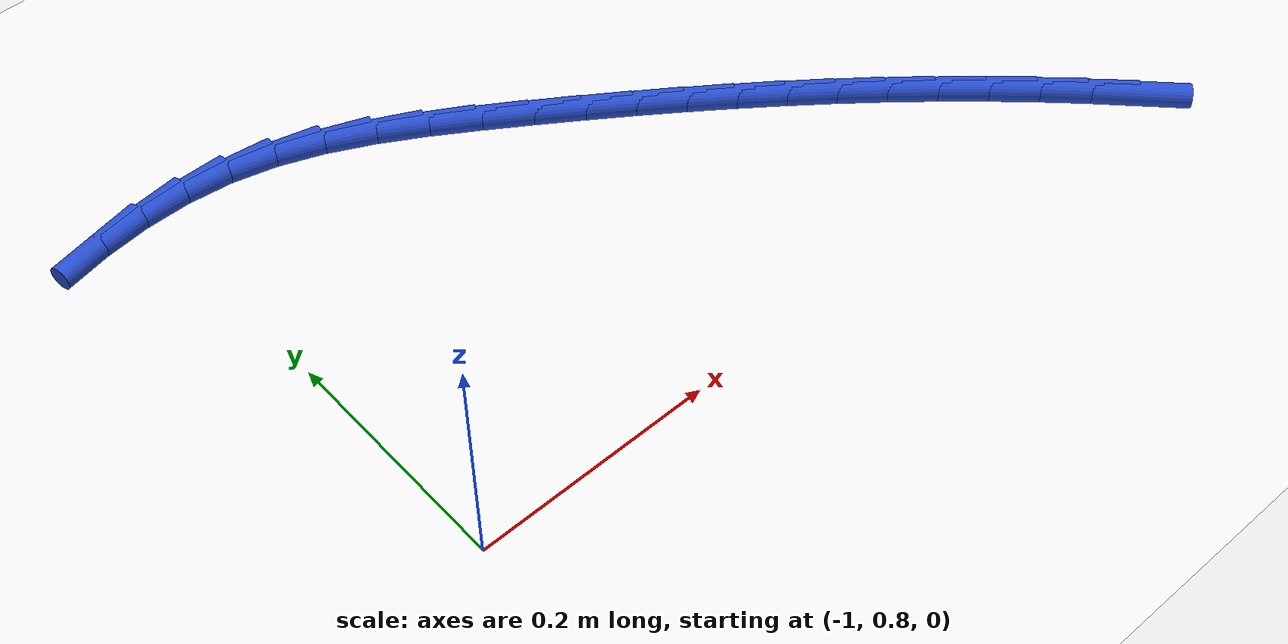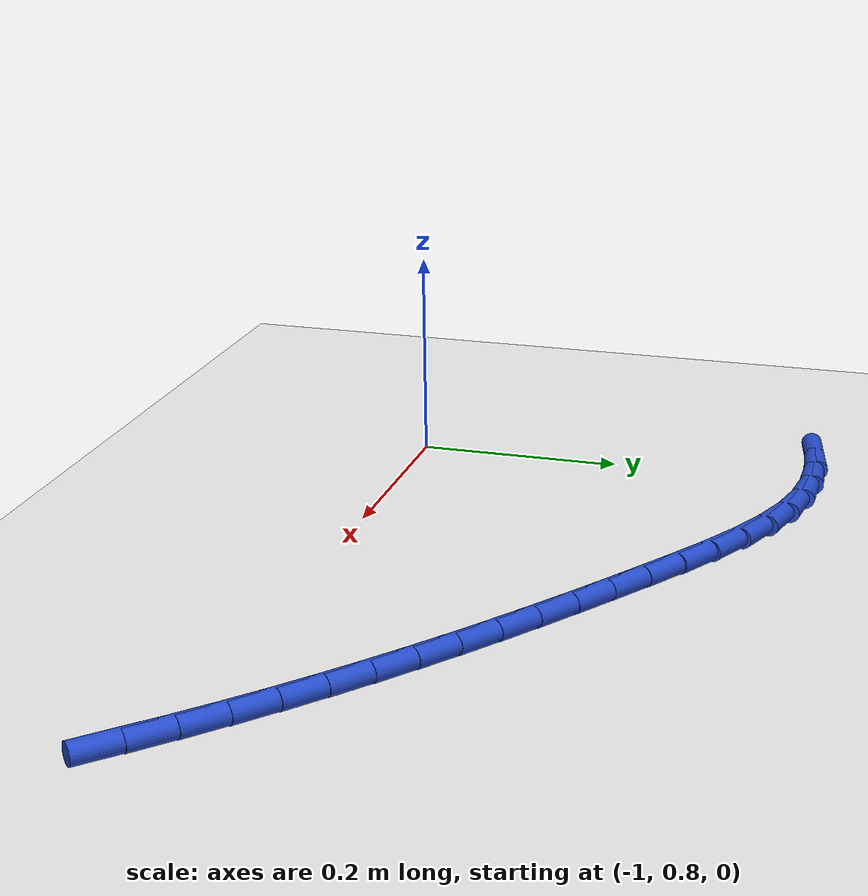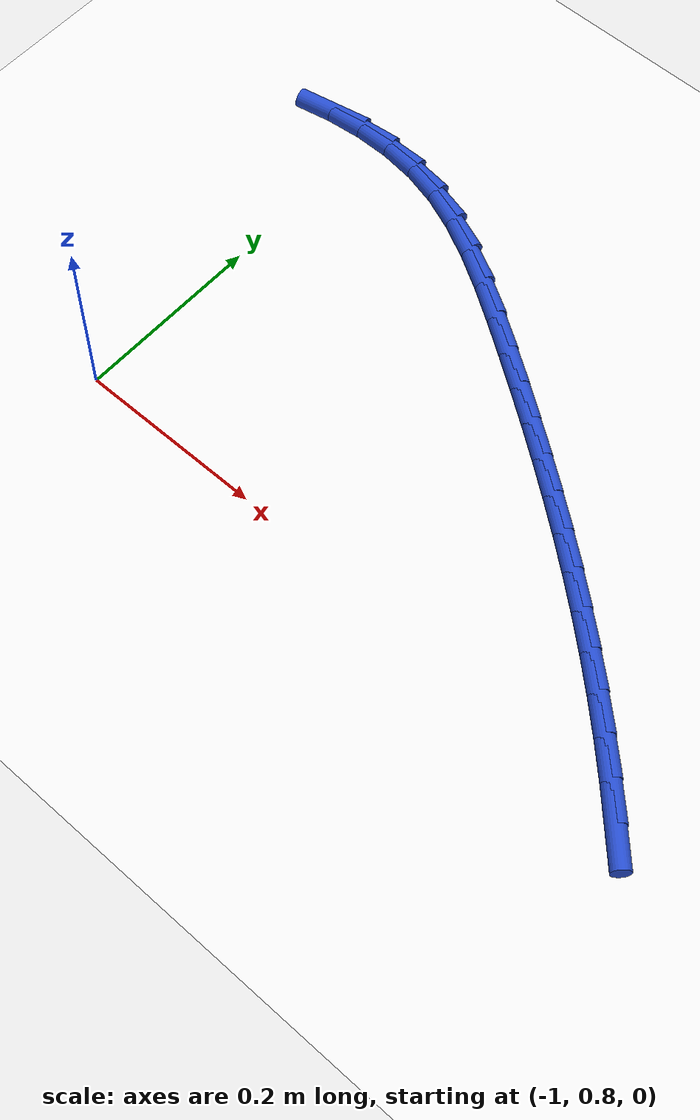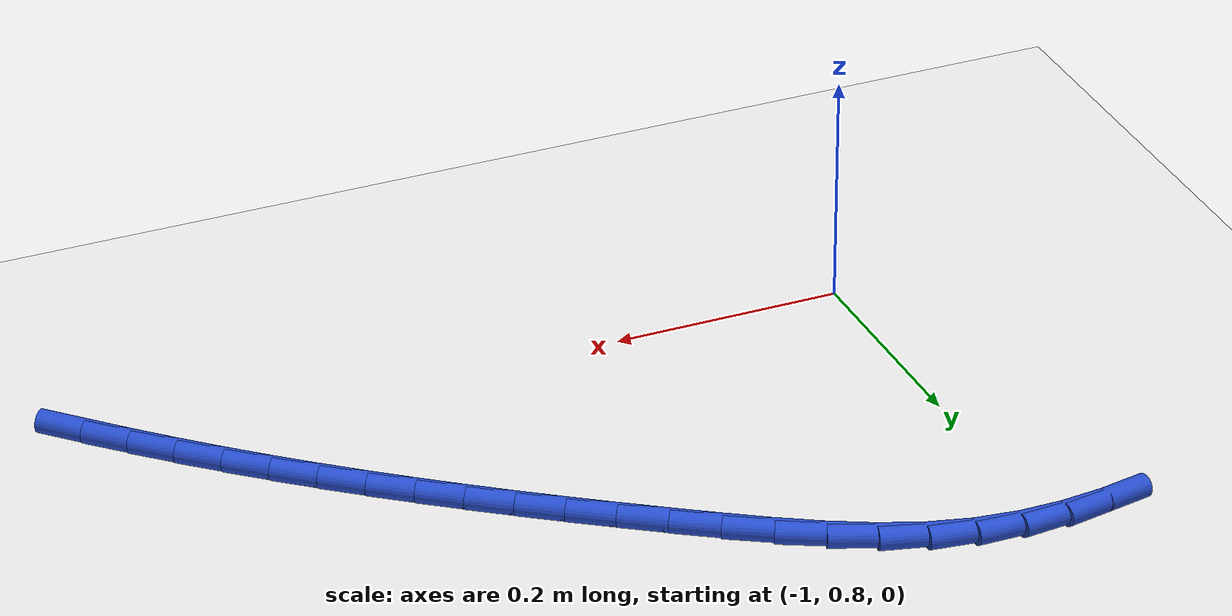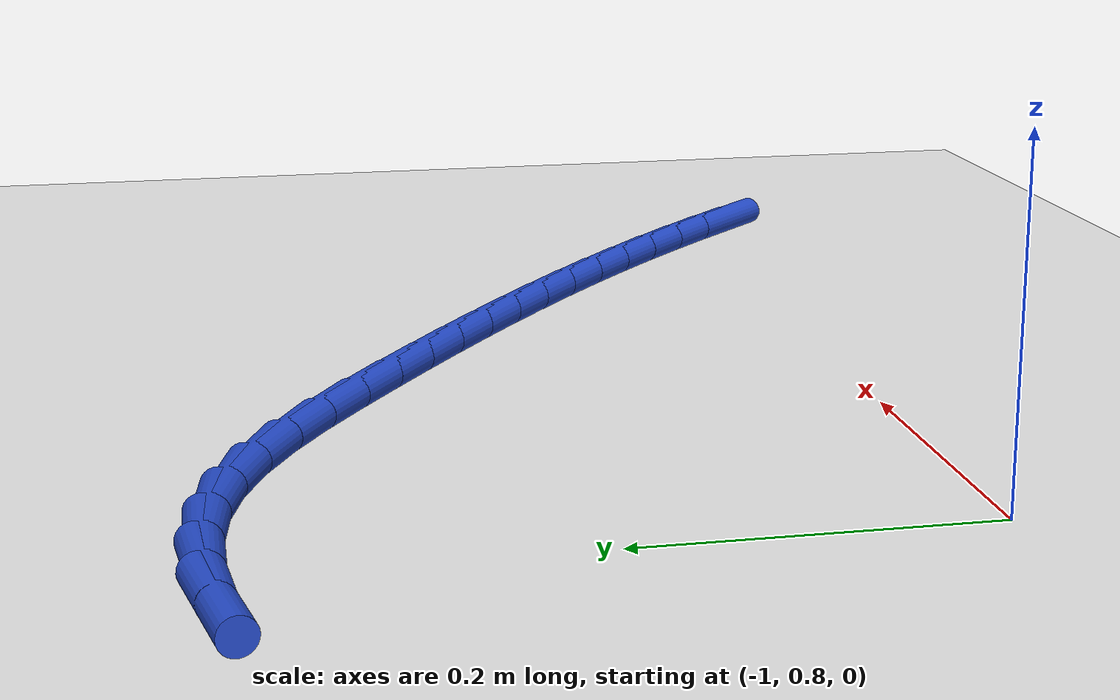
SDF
<sdf version="1.6">
 <world name="default">
  <model name="ground_plane">
   <static>1</static>
   <link name="link">
    <collision name="collision">
     <geometry><plane><normal>0 0 1</normal><size>100 100</size></plane></geometry>
     <surface><friction><ode><mu>100</mu><mu2>50</mu2></ode></friction></surface>
    </collision>
    <visual name="visual">
     <cast_shadows>0</cast_shadows>
     <geometry><plane><normal>0 0 1</normal><size>100 100</size></plane></geometry>
     <material>
      <script><uri>file://media/materials/scripts/gazebo.material</uri><name>Gazebo/WhiteGlow</name></script>
     </material>
    </visual>
   </link>
  </model>
  <model name="line">
   <link name="link_21">
    <pose>-0.33980411777558917 0.7730283741521049 0.01 0 1.57 -0.7971455826678787</pose>
    <collision name="collision">
     <geometry><cylinder><radius>0.01</radius><length>0.08</length></cylinder></geometry>
    </collision>
    <visual name="visual">
     <material>
      <script><name>Gazebo/Blue</name><uri>file://media/materials/scripts/gazebo.material</uri></script>
     </material>
     <geometry><cylinder><radius>0.01</radius><length>0.08</length></cylinder></geometry>
    </visual>
   </link>
   <link name="link_22">
    <pose>-0.368734012481738 0.8026460837535367 0.01 0 1.57 -0.77388246867499</pose>
    <collision name="collision">
     <geometry><cylinder><radius>0.01</radius><length>0.08</length></cylinder></geometry>
    </collision>
    <visual name="visual">
     <material>
      <script><name>Gazebo/Blue</name><uri>file://media/materials/scripts/gazebo.material</uri></script>
     </material>
     <geometry><cylinder><radius>0.01</radius><length>0.08</length></cylinder></geometry>
    </visual>
   </link>
   <link name="link_23">
    <pose>-0.3982749428470707 0.8315143617721263 0.01 0 1.57 -0.7516382280463985</pose>
    <collision name="collision">
     <geometry><cylinder><radius>0.01</radius><length>0.08</length></cylinder></geometry>
    </collision>
    <visual name="visual">
     <material>
      <script><name>Gazebo/Blue</name><uri>file://media/materials/scripts/gazebo.material</uri></script>
     </material>
     <geometry><cylinder><radius>0.01</radius><length>0.08</length></cylinder></geometry>
    </visual>
   </link>
   <link name="link_24">
    <pose>-0.4283514186128625 0.8596256749027649 0.01 0 1.57 -0.7303479050788299</pose>
    <collision name="collision">
     <geometry><cylinder><radius>0.01</radius><length>0.08</length></cylinder></geometry>
    </collision>
    <visual name="visual">
     <material>
      <script><name>Gazebo/Blue</name><uri>file://media/materials/scripts/gazebo.material</uri></script>
     </material>
     <geometry><cylinder><radius>0.01</radius><length>0.08</length></cylinder></geometry>
    </visual>
   </link>
   <link name="link_25">
    <pose>-0.4588879495203888 0.8869724898403437 0.01 0 1.57 -0.7099626795273344</pose>
    <collision name="collision">
     <geometry><cylinder><radius>0.01</radius><length>0.08</length></cylinder></geometry>
    </collision>
    <visual name="visual">
     <material>
      <script><name>Gazebo/Blue</name><uri>file://media/materials/scripts/gazebo.material</uri></script>
     </material>
     <geometry><cylinder><radius>0.01</radius><length>0.08</length></cylinder></geometry>
    </visual>
   </link>
   <link name="link_26">
    <pose>-0.4898203367833353 0.9135577561625234 0.01 0 1.57 -0.6905706430932614</pose>
    <collision name="collision">
     <geometry><cylinder><radius>0.01</radius><length>0.08</length></cylinder></geometry>
    </collision>
    <visual name="visual">
     <material>
      <script><name>Gazebo/Blue</name><uri>file://media/materials/scripts/gazebo.material</uri></script>
     </material>
     <geometry><cylinder><radius>0.01</radius><length>0.08</length></cylinder></geometry>
    </visual>
   </link>
   <link name="link_27">
    <pose>-0.5211498620340775 0.9394452147705288 0.01 0 1.57 -0.6723176851539336</pose>
    <collision name="collision">
     <geometry><cylinder><radius>0.01</radius><length>0.08</length></cylinder></geometry>
    </collision>
    <visual name="visual">
     <material>
      <script><name>Gazebo/Blue</name><uri>file://media/materials/scripts/gazebo.material</uri></script>
     </material>
     <geometry><cylinder><radius>0.01</radius><length>0.08</length></cylinder></geometry>
    </visual>
   </link>
   <link name="link_28">
    <pose>-0.552901353123085 0.9647204666237745 0.01 0 1.57 -0.6553197093487563</pose>
    <collision name="collision">
     <geometry><cylinder><radius>0.01</radius><length>0.08</length></cylinder></geometry>
    </collision>
    <visual name="visual">
     <material>
      <script><name>Gazebo/Blue</name><uri>file://media/materials/scripts/gazebo.material</uri></script>
     </material>
     <geometry><cylinder><radius>0.01</radius><length>0.08</length></cylinder></geometry>
    </visual>
   </link>
   <link name="link_29">
    <pose>-0.58509966882472 0.9894691413910883 0.01 0 1.57 -0.6396746259816064</pose>
    <collision name="collision">
     <geometry><cylinder><radius>0.01</radius><length>0.08</length></cylinder></geometry>
    </collision>
    <visual name="visual">
     <material>
      <script><name>Gazebo/Blue</name><uri>file://media/materials/scripts/gazebo.material</uri></script>
     </material>
     <geometry><cylinder><radius>0.01</radius><length>0.08</length></cylinder></geometry>
    </visual>
   </link>
   <link name="link_30">
    <pose>-0.6177696679133462 1.0137768687412994 0.01 0 1.57 -0.6254611918089062</pose>
    <collision name="collision">
     <geometry><cylinder><radius>0.01</radius><length>0.08</length></cylinder></geometry>
    </collision>
    <visual name="visual">
     <material>
      <script><name>Gazebo/Blue</name><uri>file://media/materials/scripts/gazebo.material</uri></script>
     </material>
     <geometry><cylinder><radius>0.01</radius><length>0.08</length></cylinder></geometry>
    </visual>
   </link>
   <link name="link_31">
    <pose>-0.6509362091633265 1.0377292783432353 0.01 0 1.57 -0.6127385009613265</pose>
    <collision name="collision">
     <geometry><cylinder><radius>0.01</radius><length>0.08</length></cylinder></geometry>
    </collision>
    <visual name="visual">
     <material>
      <script><name>Gazebo/Blue</name><uri>file://media/materials/scripts/gazebo.material</uri></script>
     </material>
     <geometry><cylinder><radius>0.01</radius><length>0.08</length></cylinder></geometry>
    </visual>
   </link>
   <link name="link_32">
    <pose>-0.6846241513490241 1.0614119998657245 0.01 0 1.57 -0.6015461071797519</pose>
    <collision name="collision">
     <geometry><cylinder><radius>0.01</radius><length>0.08</length></cylinder></geometry>
    </collision>
    <visual name="visual">
     <material>
      <script><name>Gazebo/Blue</name><uri>file://media/materials/scripts/gazebo.material</uri></script>
     </material>
     <geometry><cylinder><radius>0.01</radius><length>0.08</length></cylinder></geometry>
    </visual>
   </link>
   <link name="link_33">
    <pose>-0.7188583532448021 1.084910662977596 0.01 0 1.57 -0.5916585411646436</pose>
    <collision name="collision">
     <geometry><cylinder><radius>0.01</radius><length>0.08</length></cylinder></geometry>
    </collision>
    <visual name="visual">
     <material>
      <script><name>Gazebo/Blue</name><uri>file://media/materials/scripts/gazebo.material</uri></script>
     </material>
     <geometry><cylinder><radius>0.01</radius><length>0.08</length></cylinder></geometry>
    </visual>
   </link>
   <link name="link_34">
    <pose>-0.7536631852865611 1.1082981315384153 0.01 0 1.57 -0.573368196473278</pose>
    <collision name="collision">
     <geometry><cylinder><radius>0.01</radius><length>0.08</length></cylinder></geometry>
    </collision>
    <visual name="visual">
     <material>
      <script><name>Gazebo/Blue</name><uri>file://media/materials/scripts/gazebo.material</uri></script>
     </material>
     <geometry><cylinder><radius>0.01</radius><length>0.08</length></cylinder></geometry>
    </visual>
   </link>
   <link name="link_35">
    <pose>-0.7890437842172598 1.1311444753942805 0.01 0 1.57 -0.5333619036671445</pose>
    <collision name="collision">
     <geometry><cylinder><radius>0.01</radius><length>0.08</length></cylinder></geometry>
    </collision>
    <visual name="visual">
     <material>
      <script><name>Gazebo/Blue</name><uri>file://media/materials/scripts/gazebo.material</uri></script>
     </material>
     <geometry><cylinder><radius>0.01</radius><length>0.08</length></cylinder></geometry>
    </visual>
   </link>
   <link name="link_36">
    <pose>-0.8249801562062077 1.1523628181655352 0.01 0 1.57 -0.46854795316858827</pose>
    <collision name="collision">
     <geometry><cylinder><radius>0.01</radius><length>0.08</length></cylinder></geometry>
    </collision>
    <visual name="visual">
     <material>
      <script><name>Gazebo/Blue</name><uri>file://media/materials/scripts/gazebo.material</uri></script>
     </material>
     <geometry><cylinder><radius>0.01</radius><length>0.08</length></cylinder></geometry>
    </visual>
   </link>
   <link name="link_37">
    <pose>-0.8614506132054851 1.170821994407329 0.01 0 1.57 -0.3752671056147834</pose>
    <collision name="collision">
     <geometry><cylinder><radius>0.01</radius><length>0.08</length></cylinder></geometry>
    </collision>
    <visual name="visual">
     <material>
      <script><name>Gazebo/Blue</name><uri>file://media/materials/scripts/gazebo.material</uri></script>
     </material>
     <geometry><cylinder><radius>0.01</radius><length>0.08</length></cylinder></geometry>
    </visual>
   </link>
   <link name="link_38">
    <pose>-0.8984334671671717 1.185390838674812 0.01 0 1.57 -0.2518647060923827</pose>
    <collision name="collision">
     <geometry><cylinder><radius>0.01</radius><length>0.08</length></cylinder></geometry>
    </collision>
    <visual name="visual">
     <material>
      <script><name>Gazebo/Blue</name><uri>file://media/materials/scripts/gazebo.material</uri></script>
     </material>
     <geometry><cylinder><radius>0.01</radius><length>0.08</length></cylinder></geometry>
    </visual>
   </link>
   <link name="link_39">
    <pose>-0.9359052928619055 1.195033431868869 0.01 0 1.57 -0.12143163181642301</pose>
    <collision name="collision">
     <geometry><cylinder><radius>0.01</radius><length>0.08</length></cylinder></geometry>
    </collision>
    <visual name="visual">
     <material>
      <script><name>Gazebo/Blue</name><uri>file://media/materials/scripts/gazebo.material</uri></script>
     </material>
     <geometry><cylinder><radius>0.01</radius><length>0.08</length></cylinder></geometry>
    </visual>
   </link>
   <link name="link_40">
    <pose>-0.9738253920925073 1.1996608987767292 0.01 0 1.57 -0.0017251297064345215</pose>
    <collision name="collision">
     <geometry><cylinder><radius>0.01</radius><length>0.08</length></cylinder></geometry>
    </collision>
    <visual name="visual">
     <material>
      <script><name>Gazebo/Blue</name><uri>file://media/materials/scripts/gazebo.material</uri></script>
     </material>
     <geometry><cylinder><radius>0.01</radius><length>0.08</length></cylinder></geometry>
    </visual>
   </link>
   <link name="link_41">
    <pose>-1.0121431695859942 1.1997270019785438 0.01 0 1.57 0.10398435955020283</pose>
    <collision name="collision">
     <geometry><cylinder><radius>0.01</radius><length>0.08</length></cylinder></geometry>
    </collision>
    <visual name="visual">
     <material>
      <script><name>Gazebo/Blue</name><uri>file://media/materials/scripts/gazebo.material</uri></script>
     </material>
     <geometry><cylinder><radius>0.01</radius><length>0.08</length></cylinder></geometry>
    </visual>
   </link>
   <link name="link_42">
    <pose>-1.0508079130600219 1.1956919194545854 0.01 0 1.57 0.19452840680415154</pose>
    <collision name="collision">
     <geometry><cylinder><radius>0.01</radius><length>0.08</length></cylinder></geometry>
    </collision>
    <visual name="visual">
     <material>
      <script><name>Gazebo/Blue</name><uri>file://media/materials/scripts/gazebo.material</uri></script>
     </material>
     <geometry><cylinder><radius>0.01</radius><length>0.08</length></cylinder></geometry>
    </visual>
   </link>
  </model>
 </world>
</sdf>
